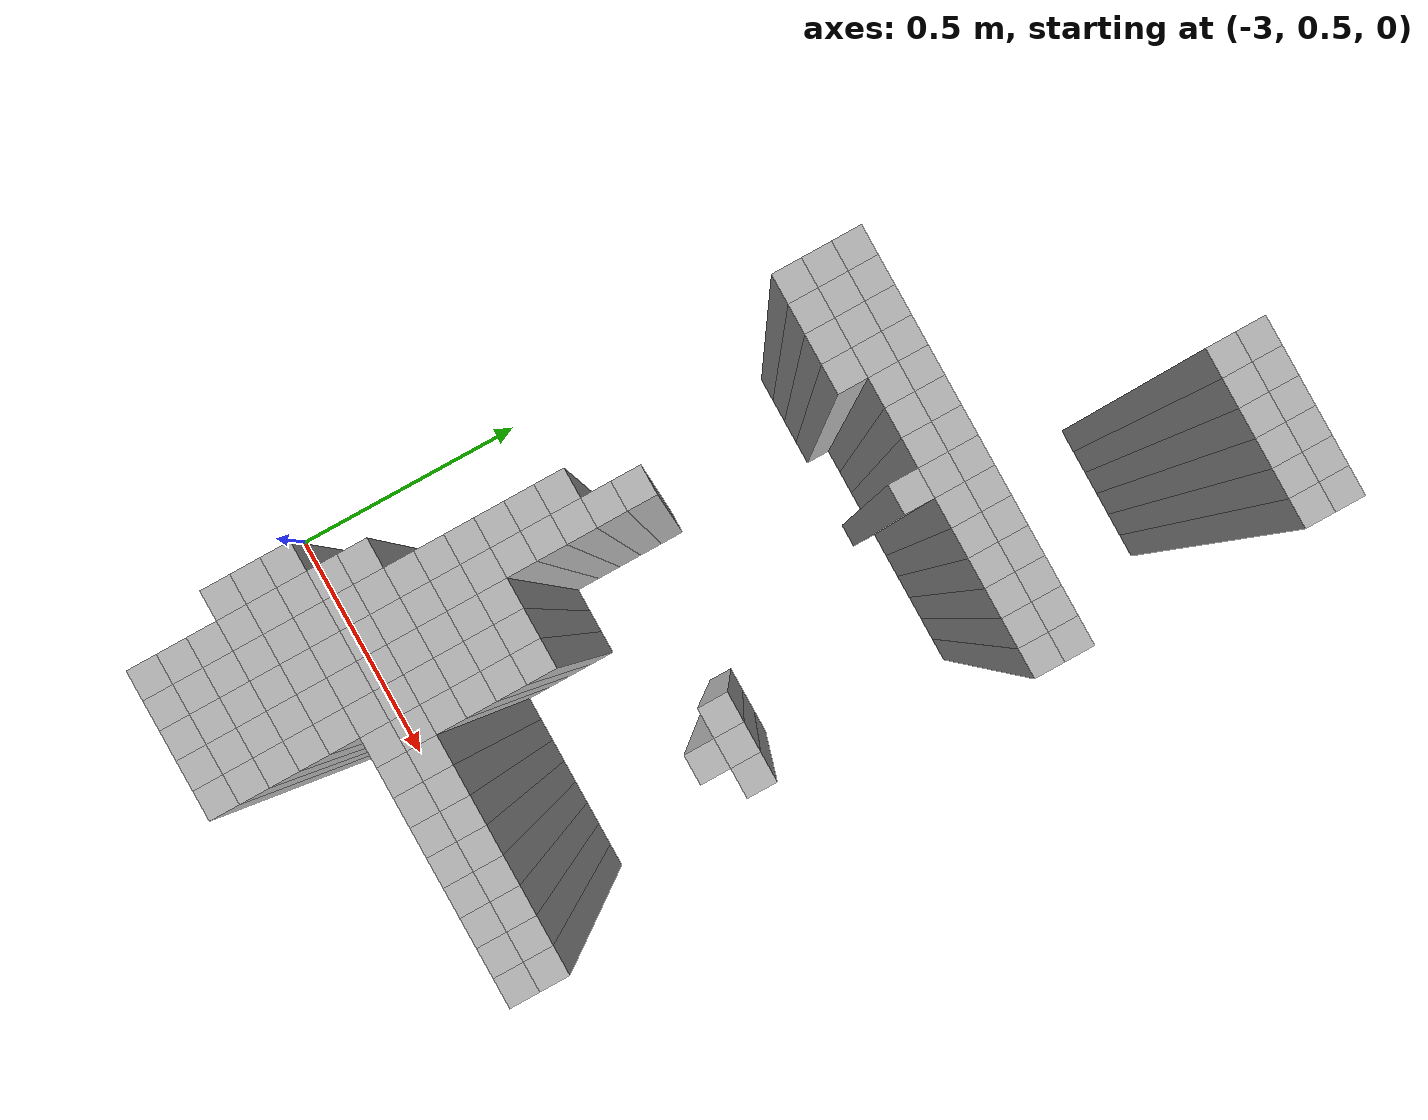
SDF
<sdf version="1.9">
 <world name="map_world">
  <model name="wall_175_112">
   <static>true</static>
   <pose>-2.411 2.080 1.250 0 0 0</pose>
   <link name="link">
    <collision name="collision"><geometry><box><size>0.050 0.050 2.500</size></box></geometry></collision>
    <visual name="visual"><geometry><box><size>0.050 0.050 2.500</size></box></geometry></visual>
   </link>
  </model>
  <model name="wall_176_112">
   <static>true</static>
   <pose>-2.361 2.080 1.250 0 0 0</pose>
   <link name="link">
    <collision name="collision"><geometry><box><size>0.050 0.050 2.500</size></box></geometry></collision>
    <visual name="visual"><geometry><box><size>0.050 0.050 2.500</size></box></geometry></visual>
   </link>
  </model>
  <model name="wall_177_112">
   <static>true</static>
   <pose>-2.311 2.080 1.250 0 0 0</pose>
   <link name="link">
    <collision name="collision"><geometry><box><size>0.050 0.050 2.500</size></box></geometry></collision>
    <visual name="visual"><geometry><box><size>0.050 0.050 2.500</size></box></geometry></visual>
   </link>
  </model>
  <model name="wall_178_112">
   <static>true</static>
   <pose>-2.261 2.080 1.250 0 0 0</pose>
   <link name="link">
    <collision name="collision"><geometry><box><size>0.050 0.050 2.500</size></box></geometry></collision>
    <visual name="visual"><geometry><box><size>0.050 0.050 2.500</size></box></geometry></visual>
   </link>
  </model>
  <model name="wall_179_112">
   <static>true</static>
   <pose>-2.211 2.080 1.250 0 0 0</pose>
   <link name="link">
    <collision name="collision"><geometry><box><size>0.050 0.050 2.500</size></box></geometry></collision>
    <visual name="visual"><geometry><box><size>0.050 0.050 2.500</size></box></geometry></visual>
   </link>
  </model>
  <model name="wall_180_112">
   <static>true</static>
   <pose>-2.161 2.080 1.250 0 0 0</pose>
   <link name="link">
    <collision name="collision"><geometry><box><size>0.050 0.050 2.500</size></box></geometry></collision>
    <visual name="visual"><geometry><box><size>0.050 0.050 2.500</size></box></geometry></visual>
   </link>
  </model>
  <model name="wall_175_113">
   <static>true</static>
   <pose>-2.411 2.030 1.250 0 0 0</pose>
   <link name="link">
    <collision name="collision"><geometry><box><size>0.050 0.050 2.500</size></box></geometry></collision>
    <visual name="visual"><geometry><box><size>0.050 0.050 2.500</size></box></geometry></visual>
   </link>
  </model>
  <model name="wall_176_113">
   <static>true</static>
   <pose>-2.361 2.030 1.250 0 0 0</pose>
   <link name="link">
    <collision name="collision"><geometry><box><size>0.050 0.050 2.500</size></box></geometry></collision>
    <visual name="visual"><geometry><box><size>0.050 0.050 2.500</size></box></geometry></visual>
   </link>
  </model>
  <model name="wall_177_113">
   <static>true</static>
   <pose>-2.311 2.030 1.250 0 0 0</pose>
   <link name="link">
    <collision name="collision"><geometry><box><size>0.050 0.050 2.500</size></box></geometry></collision>
    <visual name="visual"><geometry><box><size>0.050 0.050 2.500</size></box></geometry></visual>
   </link>
  </model>
  <model name="wall_178_113">
   <static>true</static>
   <pose>-2.261 2.030 1.250 0 0 0</pose>
   <link name="link">
    <collision name="collision"><geometry><box><size>0.050 0.050 2.500</size></box></geometry></collision>
    <visual name="visual"><geometry><box><size>0.050 0.050 2.500</size></box></geometry></visual>
   </link>
  </model>
  <model name="wall_179_113">
   <static>true</static>
   <pose>-2.211 2.030 1.250 0 0 0</pose>
   <link name="link">
    <collision name="collision"><geometry><box><size>0.050 0.050 2.500</size></box></geometry></collision>
    <visual name="visual"><geometry><box><size>0.050 0.050 2.500</size></box></geometry></visual>
   </link>
  </model>
  <model name="wall_180_113">
   <static>true</static>
   <pose>-2.161 2.030 1.250 0 0 0</pose>
   <link name="link">
    <collision name="collision"><geometry><box><size>0.050 0.050 2.500</size></box></geometry></collision>
    <visual name="visual"><geometry><box><size>0.050 0.050 2.500</size></box></geometry></visual>
   </link>
  </model>
  <model name="wall_167_121">
   <static>true</static>
   <pose>-2.811 1.630 1.250 0 0 0</pose>
   <link name="link">
    <collision name="collision"><geometry><box><size>0.050 0.050 2.500</size></box></geometry></collision>
    <visual name="visual"><geometry><box><size>0.050 0.050 2.500</size></box></geometry></visual>
   </link>
  </model>
  <model name="wall_168_121">
   <static>true</static>
   <pose>-2.761 1.630 1.250 0 0 0</pose>
   <link name="link">
    <collision name="collision"><geometry><box><size>0.050 0.050 2.500</size></box></geometry></collision>
    <visual name="visual"><geometry><box><size>0.050 0.050 2.500</size></box></geometry></visual>
   </link>
  </model>
  <model name="wall_169_121">
   <static>true</static>
   <pose>-2.711 1.630 1.250 0 0 0</pose>
   <link name="link">
    <collision name="collision"><geometry><box><size>0.050 0.050 2.500</size></box></geometry></collision>
    <visual name="visual"><geometry><box><size>0.050 0.050 2.500</size></box></geometry></visual>
   </link>
  </model>
  <model name="wall_170_121">
   <static>true</static>
   <pose>-2.661 1.630 1.250 0 0 0</pose>
   <link name="link">
    <collision name="collision"><geometry><box><size>0.050 0.050 2.500</size></box></geometry></collision>
    <visual name="visual"><geometry><box><size>0.050 0.050 2.500</size></box></geometry></visual>
   </link>
  </model>
  <model name="wall_171_121">
   <static>true</static>
   <pose>-2.611 1.630 1.250 0 0 0</pose>
   <link name="link">
    <collision name="collision"><geometry><box><size>0.050 0.050 2.500</size></box></geometry></collision>
    <visual name="visual"><geometry><box><size>0.050 0.050 2.500</size></box></geometry></visual>
   </link>
  </model>
  <model name="wall_172_121">
   <static>true</static>
   <pose>-2.561 1.630 1.250 0 0 0</pose>
   <link name="link">
    <collision name="collision"><geometry><box><size>0.050 0.050 2.500</size></box></geometry></collision>
    <visual name="visual"><geometry><box><size>0.050 0.050 2.500</size></box></geometry></visual>
   </link>
  </model>
  <model name="wall_173_121">
   <static>true</static>
   <pose>-2.511 1.630 1.250 0 0 0</pose>
   <link name="link">
    <collision name="collision"><geometry><box><size>0.050 0.050 2.500</size></box></geometry></collision>
    <visual name="visual"><geometry><box><size>0.050 0.050 2.500</size></box></geometry></visual>
   </link>
  </model>
  <model name="wall_174_121">
   <static>true</static>
   <pose>-2.461 1.630 1.250 0 0 0</pose>
   <link name="link">
    <collision name="collision"><geometry><box><size>0.050 0.050 2.500</size></box></geometry></collision>
    <visual name="visual"><geometry><box><size>0.050 0.050 2.500</size></box></geometry></visual>
   </link>
  </model>
  <model name="wall_175_121">
   <static>true</static>
   <pose>-2.411 1.630 1.250 0 0 0</pose>
   <link name="link">
    <collision name="collision"><geometry><box><size>0.050 0.050 2.500</size></box></geometry></collision>
    <visual name="visual"><geometry><box><size>0.050 0.050 2.500</size></box></geometry></visual>
   </link>
  </model>
  <model name="wall_176_121">
   <static>true</static>
   <pose>-2.361 1.630 1.250 0 0 0</pose>
   <link name="link">
    <collision name="collision"><geometry><box><size>0.050 0.050 2.500</size></box></geometry></collision>
    <visual name="visual"><geometry><box><size>0.050 0.050 2.500</size></box></geometry></visual>
   </link>
  </model>
  <model name="wall_177_121">
   <static>true</static>
   <pose>-2.311 1.630 1.250 0 0 0</pose>
   <link name="link">
    <collision name="collision"><geometry><box><size>0.050 0.050 2.500</size></box></geometry></collision>
    <visual name="visual"><geometry><box><size>0.050 0.050 2.500</size></box></geometry></visual>
   </link>
  </model>
  <model name="wall_178_121">
   <static>true</static>
   <pose>-2.261 1.630 1.250 0 0 0</pose>
   <link name="link">
    <collision name="collision"><geometry><box><size>0.050 0.050 2.500</size></box></geometry></collision>
    <visual name="visual"><geometry><box><size>0.050 0.050 2.500</size></box></geometry></visual>
   </link>
  </model>
  <model name="wall_179_121">
   <static>true</static>
   <pose>-2.211 1.630 1.250 0 0 0</pose>
   <link name="link">
    <collision name="collision"><geometry><box><size>0.050 0.050 2.500</size></box></geometry></collision>
    <visual name="visual"><geometry><box><size>0.050 0.050 2.500</size></box></geometry></visual>
   </link>
  </model>
  <model name="wall_180_121">
   <static>true</static>
   <pose>-2.161 1.630 1.250 0 0 0</pose>
   <link name="link">
    <collision name="collision"><geometry><box><size>0.050 0.050 2.500</size></box></geometry></collision>
    <visual name="visual"><geometry><box><size>0.050 0.050 2.500</size></box></geometry></visual>
   </link>
  </model>
  <model name="wall_167_122">
   <static>true</static>
   <pose>-2.811 1.580 1.250 0 0 0</pose>
   <link name="link">
    <collision name="collision"><geometry><box><size>0.050 0.050 2.500</size></box></geometry></collision>
    <visual name="visual"><geometry><box><size>0.050 0.050 2.500</size></box></geometry></visual>
   </link>
  </model>
  <model name="wall_168_122">
   <static>true</static>
   <pose>-2.761 1.580 1.250 0 0 0</pose>
   <link name="link">
    <collision name="collision"><geometry><box><size>0.050 0.050 2.500</size></box></geometry></collision>
    <visual name="visual"><geometry><box><size>0.050 0.050 2.500</size></box></geometry></visual>
   </link>
  </model>
  <model name="wall_169_122">
   <static>true</static>
   <pose>-2.711 1.580 1.250 0 0 0</pose>
   <link name="link">
    <collision name="collision"><geometry><box><size>0.050 0.050 2.500</size></box></geometry></collision>
    <visual name="visual"><geometry><box><size>0.050 0.050 2.500</size></box></geometry></visual>
   </link>
  </model>
  <model name="wall_170_122">
   <static>true</static>
   <pose>-2.661 1.580 1.250 0 0 0</pose>
   <link name="link">
    <collision name="collision"><geometry><box><size>0.050 0.050 2.500</size></box></geometry></collision>
    <visual name="visual"><geometry><box><size>0.050 0.050 2.500</size></box></geometry></visual>
   </link>
  </model>
  <model name="wall_171_122">
   <static>true</static>
   <pose>-2.611 1.580 1.250 0 0 0</pose>
   <link name="link">
    <collision name="collision"><geometry><box><size>0.050 0.050 2.500</size></box></geometry></collision>
    <visual name="visual"><geometry><box><size>0.050 0.050 2.500</size></box></geometry></visual>
   </link>
  </model>
  <model name="wall_172_122">
   <static>true</static>
   <pose>-2.561 1.580 1.250 0 0 0</pose>
   <link name="link">
    <collision name="collision"><geometry><box><size>0.050 0.050 2.500</size></box></geometry></collision>
    <visual name="visual"><geometry><box><size>0.050 0.050 2.500</size></box></geometry></visual>
   </link>
  </model>
  <model name="wall_173_122">
   <static>true</static>
   <pose>-2.511 1.580 1.250 0 0 0</pose>
   <link name="link">
    <collision name="collision"><geometry><box><size>0.050 0.050 2.500</size></box></geometry></collision>
    <visual name="visual"><geometry><box><size>0.050 0.050 2.500</size></box></geometry></visual>
   </link>
  </model>
  <model name="wall_174_122">
   <static>true</static>
   <pose>-2.461 1.580 1.250 0 0 0</pose>
   <link name="link">
    <collision name="collision"><geometry><box><size>0.050 0.050 2.500</size></box></geometry></collision>
    <visual name="visual"><geometry><box><size>0.050 0.050 2.500</size></box></geometry></visual>
   </link>
  </model>
  <model name="wall_175_122">
   <static>true</static>
   <pose>-2.411 1.580 1.250 0 0 0</pose>
   <link name="link">
    <collision name="collision"><geometry><box><size>0.050 0.050 2.500</size></box></geometry></collision>
    <visual name="visual"><geometry><box><size>0.050 0.050 2.500</size></box></geometry></visual>
   </link>
  </model>
  <model name="wall_176_122">
   <static>true</static>
   <pose>-2.361 1.580 1.250 0 0 0</pose>
   <link name="link">
    <collision name="collision"><geometry><box><size>0.050 0.050 2.500</size></box></geometry></collision>
    <visual name="visual"><geometry><box><size>0.050 0.050 2.500</size></box></geometry></visual>
   </link>
  </model>
  <model name="wall_177_122">
   <static>true</static>
   <pose>-2.311 1.580 1.250 0 0 0</pose>
   <link name="link">
    <collision name="collision"><geometry><box><size>0.050 0.050 2.500</size></box></geometry></collision>
    <visual name="visual"><geometry><box><size>0.050 0.050 2.500</size></box></geometry></visual>
   </link>
  </model>
  <model name="wall_178_122">
   <static>true</static>
   <pose>-2.261 1.580 1.250 0 0 0</pose>
   <link name="link">
    <collision name="collision"><geometry><box><size>0.050 0.050 2.500</size></box></geometry></collision>
    <visual name="visual"><geometry><box><size>0.050 0.050 2.500</size></box></geometry></visual>
   </link>
  </model>
  <model name="wall_179_122">
   <static>true</static>
   <pose>-2.211 1.580 1.250 0 0 0</pose>
   <link name="link">
    <collision name="collision"><geometry><box><size>0.050 0.050 2.500</size></box></geometry></collision>
    <visual name="visual"><geometry><box><size>0.050 0.050 2.500</size></box></geometry></visual>
   </link>
  </model>
  <model name="wall_180_122">
   <static>true</static>
   <pose>-2.161 1.580 1.250 0 0 0</pose>
   <link name="link">
    <collision name="collision"><geometry><box><size>0.050 0.050 2.500</size></box></geometry></collision>
    <visual name="visual"><geometry><box><size>0.050 0.050 2.500</size></box></geometry></visual>
   </link>
  </model>
  <model name="wall_167_123">
   <static>true</static>
   <pose>-2.811 1.530 1.250 0 0 0</pose>
   <link name="link">
    <collision name="collision"><geometry><box><size>0.050 0.050 2.500</size></box></geometry></collision>
    <visual name="visual"><geometry><box><size>0.050 0.050 2.500</size></box></geometry></visual>
   </link>
  </model>
  <model name="wall_168_123">
   <static>true</static>
   <pose>-2.761 1.530 1.250 0 0 0</pose>
   <link name="link">
    <collision name="collision"><geometry><box><size>0.050 0.050 2.500</size></box></geometry></collision>
    <visual name="visual"><geometry><box><size>0.050 0.050 2.500</size></box></geometry></visual>
   </link>
  </model>
  <model name="wall_169_123">
   <static>true</static>
   <pose>-2.711 1.530 1.250 0 0 0</pose>
   <link name="link">
    <collision name="collision"><geometry><box><size>0.050 0.050 2.500</size></box></geometry></collision>
    <visual name="visual"><geometry><box><size>0.050 0.050 2.500</size></box></geometry></visual>
   </link>
  </model>
  <model name="wall_170_123">
   <static>true</static>
   <pose>-2.661 1.530 1.250 0 0 0</pose>
   <link name="link">
    <collision name="collision"><geometry><box><size>0.050 0.050 2.500</size></box></geometry></collision>
    <visual name="visual"><geometry><box><size>0.050 0.050 2.500</size></box></geometry></visual>
   </link>
  </model>
  <model name="wall_174_123">
   <static>true</static>
   <pose>-2.461 1.530 1.250 0 0 0</pose>
   <link name="link">
    <collision name="collision"><geometry><box><size>0.050 0.050 2.500</size></box></geometry></collision>
    <visual name="visual"><geometry><box><size>0.050 0.050 2.500</size></box></geometry></visual>
   </link>
  </model>
  <model name="wall_170_130">
   <static>true</static>
   <pose>-2.661 1.180 1.250 0 0 0</pose>
   <link name="link">
    <collision name="collision"><geometry><box><size>0.050 0.050 2.500</size></box></geometry></collision>
    <visual name="visual"><geometry><box><size>0.050 0.050 2.500</size></box></geometry></visual>
   </link>
  </model>
  <model name="wall_170_131">
   <static>true</static>
   <pose>-2.661 1.130 1.250 0 0 0</pose>
   <link name="link">
    <collision name="collision"><geometry><box><size>0.050 0.050 2.500</size></box></geometry></collision>
    <visual name="visual"><geometry><box><size>0.050 0.050 2.500</size></box></geometry></visual>
   </link>
  </model>
  <model name="wall_177_131">
   <static>true</static>
   <pose>-2.311 1.130 1.250 0 0 0</pose>
   <link name="link">
    <collision name="collision"><geometry><box><size>0.050 0.050 2.500</size></box></geometry></collision>
    <visual name="visual"><geometry><box><size>0.050 0.050 2.500</size></box></geometry></visual>
   </link>
  </model>
  <model name="wall_178_131">
   <static>true</static>
   <pose>-2.261 1.130 1.250 0 0 0</pose>
   <link name="link">
    <collision name="collision"><geometry><box><size>0.050 0.050 2.500</size></box></geometry></collision>
    <visual name="visual"><geometry><box><size>0.050 0.050 2.500</size></box></geometry></visual>
   </link>
  </model>
  <model name="wall_179_131">
   <static>true</static>
   <pose>-2.211 1.130 1.250 0 0 0</pose>
   <link name="link">
    <collision name="collision"><geometry><box><size>0.050 0.050 2.500</size></box></geometry></collision>
    <visual name="visual"><geometry><box><size>0.050 0.050 2.500</size></box></geometry></visual>
   </link>
  </model>
  <model name="wall_169_132">
   <static>true</static>
   <pose>-2.711 1.080 1.250 0 0 0</pose>
   <link name="link">
    <collision name="collision"><geometry><box><size>0.050 0.050 2.500</size></box></geometry></collision>
    <visual name="visual"><geometry><box><size>0.050 0.050 2.500</size></box></geometry></visual>
   </link>
  </model>
  <model name="wall_170_132">
   <static>true</static>
   <pose>-2.661 1.080 1.250 0 0 0</pose>
   <link name="link">
    <collision name="collision"><geometry><box><size>0.050 0.050 2.500</size></box></geometry></collision>
    <visual name="visual"><geometry><box><size>0.050 0.050 2.500</size></box></geometry></visual>
   </link>
  </model>
  <model name="wall_178_132">
   <static>true</static>
   <pose>-2.261 1.080 1.250 0 0 0</pose>
   <link name="link">
    <collision name="collision"><geometry><box><size>0.050 0.050 2.500</size></box></geometry></collision>
    <visual name="visual"><geometry><box><size>0.050 0.050 2.500</size></box></geometry></visual>
   </link>
  </model>
  <model name="wall_169_133">
   <static>true</static>
   <pose>-2.711 1.030 1.250 0 0 0</pose>
   <link name="link">
    <collision name="collision"><geometry><box><size>0.050 0.050 2.500</size></box></geometry></collision>
    <visual name="visual"><geometry><box><size>0.050 0.050 2.500</size></box></geometry></visual>
   </link>
  </model>
  <model name="wall_170_133">
   <static>true</static>
   <pose>-2.661 1.030 1.250 0 0 0</pose>
   <link name="link">
    <collision name="collision"><geometry><box><size>0.050 0.050 2.500</size></box></geometry></collision>
    <visual name="visual"><geometry><box><size>0.050 0.050 2.500</size></box></geometry></visual>
   </link>
  </model>
  <model name="wall_169_134">
   <static>true</static>
   <pose>-2.711 0.980 1.250 0 0 0</pose>
   <link name="link">
    <collision name="collision"><geometry><box><size>0.050 0.050 2.500</size></box></geometry></collision>
    <visual name="visual"><geometry><box><size>0.050 0.050 2.500</size></box></geometry></visual>
   </link>
  </model>
  <model name="wall_170_134">
   <static>true</static>
   <pose>-2.661 0.980 1.250 0 0 0</pose>
   <link name="link">
    <collision name="collision"><geometry><box><size>0.050 0.050 2.500</size></box></geometry></collision>
    <visual name="visual"><geometry><box><size>0.050 0.050 2.500</size></box></geometry></visual>
   </link>
  </model>
  <model name="wall_169_135">
   <static>true</static>
   <pose>-2.711 0.930 1.250 0 0 0</pose>
   <link name="link">
    <collision name="collision"><geometry><box><size>0.050 0.050 2.500</size></box></geometry></collision>
    <visual name="visual"><geometry><box><size>0.050 0.050 2.500</size></box></geometry></visual>
   </link>
  </model>
  <model name="wall_170_135">
   <static>true</static>
   <pose>-2.661 0.930 1.250 0 0 0</pose>
   <link name="link">
    <collision name="collision"><geometry><box><size>0.050 0.050 2.500</size></box></geometry></collision>
    <visual name="visual"><geometry><box><size>0.050 0.050 2.500</size></box></geometry></visual>
   </link>
  </model>
  <model name="wall_171_135">
   <static>true</static>
   <pose>-2.611 0.930 1.250 0 0 0</pose>
   <link name="link">
    <collision name="collision"><geometry><box><size>0.050 0.050 2.500</size></box></geometry></collision>
    <visual name="visual"><geometry><box><size>0.050 0.050 2.500</size></box></geometry></visual>
   </link>
  </model>
  <model name="wall_172_135">
   <static>true</static>
   <pose>-2.561 0.930 1.250 0 0 0</pose>
   <link name="link">
    <collision name="collision"><geometry><box><size>0.050 0.050 2.500</size></box></geometry></collision>
    <visual name="visual"><geometry><box><size>0.050 0.050 2.500</size></box></geometry></visual>
   </link>
  </model>
  <model name="wall_173_135">
   <static>true</static>
   <pose>-2.511 0.930 1.250 0 0 0</pose>
   <link name="link">
    <collision name="collision"><geometry><box><size>0.050 0.050 2.500</size></box></geometry></collision>
    <visual name="visual"><geometry><box><size>0.050 0.050 2.500</size></box></geometry></visual>
   </link>
  </model>
  <model name="wall_169_136">
   <static>true</static>
   <pose>-2.711 0.880 1.250 0 0 0</pose>
   <link name="link">
    <collision name="collision"><geometry><box><size>0.050 0.050 2.500</size></box></geometry></collision>
    <visual name="visual"><geometry><box><size>0.050 0.050 2.500</size></box></geometry></visual>
   </link>
  </model>
  <model name="wall_170_136">
   <static>true</static>
   <pose>-2.661 0.880 1.250 0 0 0</pose>
   <link name="link">
    <collision name="collision"><geometry><box><size>0.050 0.050 2.500</size></box></geometry></collision>
    <visual name="visual"><geometry><box><size>0.050 0.050 2.500</size></box></geometry></visual>
   </link>
  </model>
  <model name="wall_171_136">
   <static>true</static>
   <pose>-2.611 0.880 1.250 0 0 0</pose>
   <link name="link">
    <collision name="collision"><geometry><box><size>0.050 0.050 2.500</size></box></geometry></collision>
    <visual name="visual"><geometry><box><size>0.050 0.050 2.500</size></box></geometry></visual>
   </link>
  </model>
  <model name="wall_172_136">
   <static>true</static>
   <pose>-2.561 0.880 1.250 0 0 0</pose>
   <link name="link">
    <collision name="collision"><geometry><box><size>0.050 0.050 2.500</size></box></geometry></collision>
    <visual name="visual"><geometry><box><size>0.050 0.050 2.500</size></box></geometry></visual>
   </link>
  </model>
  <model name="wall_173_136">
   <static>true</static>
   <pose>-2.511 0.880 1.250 0 0 0</pose>
   <link name="link">
    <collision name="collision"><geometry><box><size>0.050 0.050 2.500</size></box></geometry></collision>
    <visual name="visual"><geometry><box><size>0.050 0.050 2.500</size></box></geometry></visual>
   </link>
  </model>
  <model name="wall_169_137">
   <static>true</static>
   <pose>-2.711 0.830 1.250 0 0 0</pose>
   <link name="link">
    <collision name="collision"><geometry><box><size>0.050 0.050 2.500</size></box></geometry></collision>
    <visual name="visual"><geometry><box><size>0.050 0.050 2.500</size></box></geometry></visual>
   </link>
  </model>
  <model name="wall_170_137">
   <static>true</static>
   <pose>-2.661 0.830 1.250 0 0 0</pose>
   <link name="link">
    <collision name="collision"><geometry><box><size>0.050 0.050 2.500</size></box></geometry></collision>
    <visual name="visual"><geometry><box><size>0.050 0.050 2.500</size></box></geometry></visual>
   </link>
  </model>
  <model name="wall_171_137">
   <static>true</static>
   <pose>-2.611 0.830 1.250 0 0 0</pose>
   <link name="link">
    <collision name="collision"><geometry><box><size>0.050 0.050 2.500</size></box></geometry></collision>
    <visual name="visual"><geometry><box><size>0.050 0.050 2.500</size></box></geometry></visual>
   </link>
  </model>
  <model name="wall_172_137">
   <static>true</static>
   <pose>-2.561 0.830 1.250 0 0 0</pose>
   <link name="link">
    <collision name="collision"><geometry><box><size>0.050 0.050 2.500</size></box></geometry></collision>
    <visual name="visual"><geometry><box><size>0.050 0.050 2.500</size></box></geometry></visual>
   </link>
  </model>
  <model name="wall_173_137">
   <static>true</static>
   <pose>-2.511 0.830 1.250 0 0 0</pose>
   <link name="link">
    <collision name="collision"><geometry><box><size>0.050 0.050 2.500</size></box></geometry></collision>
    <visual name="visual"><geometry><box><size>0.050 0.050 2.500</size></box></geometry></visual>
   </link>
  </model>
  <model name="wall_168_138">
   <static>true</static>
   <pose>-2.761 0.780 1.250 0 0 0</pose>
   <link name="link">
    <collision name="collision"><geometry><box><size>0.050 0.050 2.500</size></box></geometry></collision>
    <visual name="visual"><geometry><box><size>0.050 0.050 2.500</size></box></geometry></visual>
   </link>
  </model>
  <model name="wall_169_138">
   <static>true</static>
   <pose>-2.711 0.780 1.250 0 0 0</pose>
   <link name="link">
    <collision name="collision"><geometry><box><size>0.050 0.050 2.500</size></box></geometry></collision>
    <visual name="visual"><geometry><box><size>0.050 0.050 2.500</size></box></geometry></visual>
   </link>
  </model>
  <model name="wall_170_138">
   <static>true</static>
   <pose>-2.661 0.780 1.250 0 0 0</pose>
   <link name="link">
    <collision name="collision"><geometry><box><size>0.050 0.050 2.500</size></box></geometry></collision>
    <visual name="visual"><geometry><box><size>0.050 0.050 2.500</size></box></geometry></visual>
   </link>
  </model>
  <model name="wall_171_138">
   <static>true</static>
   <pose>-2.611 0.780 1.250 0 0 0</pose>
   <link name="link">
    <collision name="collision"><geometry><box><size>0.050 0.050 2.500</size></box></geometry></collision>
    <visual name="visual"><geometry><box><size>0.050 0.050 2.500</size></box></geometry></visual>
   </link>
  </model>
  <model name="wall_172_138">
   <static>true</static>
   <pose>-2.561 0.780 1.250 0 0 0</pose>
   <link name="link">
    <collision name="collision"><geometry><box><size>0.050 0.050 2.500</size></box></geometry></collision>
    <visual name="visual"><geometry><box><size>0.050 0.050 2.500</size></box></geometry></visual>
   </link>
  </model>
  <model name="wall_173_138">
   <static>true</static>
   <pose>-2.511 0.780 1.250 0 0 0</pose>
   <link name="link">
    <collision name="collision"><geometry><box><size>0.050 0.050 2.500</size></box></geometry></collision>
    <visual name="visual"><geometry><box><size>0.050 0.050 2.500</size></box></geometry></visual>
   </link>
  </model>
  <model name="wall_168_139">
   <static>true</static>
   <pose>-2.761 0.730 1.250 0 0 0</pose>
   <link name="link">
    <collision name="collision"><geometry><box><size>0.050 0.050 2.500</size></box></geometry></collision>
    <visual name="visual"><geometry><box><size>0.050 0.050 2.500</size></box></geometry></visual>
   </link>
  </model>
  <model name="wall_169_139">
   <static>true</static>
   <pose>-2.711 0.730 1.250 0 0 0</pose>
   <link name="link">
    <collision name="collision"><geometry><box><size>0.050 0.050 2.500</size></box></geometry></collision>
    <visual name="visual"><geometry><box><size>0.050 0.050 2.500</size></box></geometry></visual>
   </link>
  </model>
  <model name="wall_170_139">
   <static>true</static>
   <pose>-2.661 0.730 1.250 0 0 0</pose>
   <link name="link">
    <collision name="collision"><geometry><box><size>0.050 0.050 2.500</size></box></geometry></collision>
    <visual name="visual"><geometry><box><size>0.050 0.050 2.500</size></box></geometry></visual>
   </link>
  </model>
  <model name="wall_171_139">
   <static>true</static>
   <pose>-2.611 0.730 1.250 0 0 0</pose>
   <link name="link">
    <collision name="collision"><geometry><box><size>0.050 0.050 2.500</size></box></geometry></collision>
    <visual name="visual"><geometry><box><size>0.050 0.050 2.500</size></box></geometry></visual>
   </link>
  </model>
  <model name="wall_172_139">
   <static>true</static>
   <pose>-2.561 0.730 1.250 0 0 0</pose>
   <link name="link">
    <collision name="collision"><geometry><box><size>0.050 0.050 2.500</size></box></geometry></collision>
    <visual name="visual"><geometry><box><size>0.050 0.050 2.500</size></box></geometry></visual>
   </link>
  </model>
  <model name="wall_173_139">
   <static>true</static>
   <pose>-2.511 0.730 1.250 0 0 0</pose>
   <link name="link">
    <collision name="collision"><geometry><box><size>0.050 0.050 2.500</size></box></geometry></collision>
    <visual name="visual"><geometry><box><size>0.050 0.050 2.500</size></box></geometry></visual>
   </link>
  </model>
  <model name="wall_174_139">
   <static>true</static>
   <pose>-2.461 0.730 1.250 0 0 0</pose>
   <link name="link">
    <collision name="collision"><geometry><box><size>0.050 0.050 2.500</size></box></geometry></collision>
    <visual name="visual"><geometry><box><size>0.050 0.050 2.500</size></box></geometry></visual>
   </link>
  </model>
  <model name="wall_175_139">
   <static>true</static>
   <pose>-2.411 0.730 1.250 0 0 0</pose>
   <link name="link">
    <collision name="collision"><geometry><box><size>0.050 0.050 2.500</size></box></geometry></collision>
    <visual name="visual"><geometry><box><size>0.050 0.050 2.500</size></box></geometry></visual>
   </link>
  </model>
  <model name="wall_176_139">
   <static>true</static>
   <pose>-2.361 0.730 1.250 0 0 0</pose>
   <link name="link">
    <collision name="collision"><geometry><box><size>0.050 0.050 2.500</size></box></geometry></collision>
    <visual name="visual"><geometry><box><size>0.050 0.050 2.500</size></box></geometry></visual>
   </link>
  </model>
  <model name="wall_177_139">
   <static>true</static>
   <pose>-2.311 0.730 1.250 0 0 0</pose>
   <link name="link">
    <collision name="collision"><geometry><box><size>0.050 0.050 2.500</size></box></geometry></collision>
    <visual name="visual"><geometry><box><size>0.050 0.050 2.500</size></box></geometry></visual>
   </link>
  </model>
  <model name="wall_178_139">
   <static>true</static>
   <pose>-2.261 0.730 1.250 0 0 0</pose>
   <link name="link">
    <collision name="collision"><geometry><box><size>0.050 0.050 2.500</size></box></geometry></collision>
    <visual name="visual"><geometry><box><size>0.050 0.050 2.500</size></box></geometry></visual>
   </link>
  </model>
  <model name="wall_179_139">
   <static>true</static>
   <pose>-2.211 0.730 1.250 0 0 0</pose>
   <link name="link">
    <collision name="collision"><geometry><box><size>0.050 0.050 2.500</size></box></geometry></collision>
    <visual name="visual"><geometry><box><size>0.050 0.050 2.500</size></box></geometry></visual>
   </link>
  </model>
  <model name="wall_180_139">
   <static>true</static>
   <pose>-2.161 0.730 1.250 0 0 0</pose>
   <link name="link">
    <collision name="collision"><geometry><box><size>0.050 0.050 2.500</size></box></geometry></collision>
    <visual name="visual"><geometry><box><size>0.050 0.050 2.500</size></box></geometry></visual>
   </link>
  </model>
  <model name="wall_181_139">
   <static>true</static>
   <pose>-2.111 0.730 1.250 0 0 0</pose>
   <link name="link">
    <collision name="collision"><geometry><box><size>0.050 0.050 2.500</size></box></geometry></collision>
    <visual name="visual"><geometry><box><size>0.050 0.050 2.500</size></box></geometry></visual>
   </link>
  </model>
  <model name="wall_167_140">
   <static>true</static>
   <pose>-2.811 0.680 1.250 0 0 0</pose>
   <link name="link">
    <collision name="collision"><geometry><box><size>0.050 0.050 2.500</size></box></geometry></collision>
    <visual name="visual"><geometry><box><size>0.050 0.050 2.500</size></box></geometry></visual>
   </link>
  </model>
  <model name="wall_168_140">
   <static>true</static>
   <pose>-2.761 0.680 1.250 0 0 0</pose>
   <link name="link">
    <collision name="collision"><geometry><box><size>0.050 0.050 2.500</size></box></geometry></collision>
    <visual name="visual"><geometry><box><size>0.050 0.050 2.500</size></box></geometry></visual>
   </link>
  </model>
  <model name="wall_169_140">
   <static>true</static>
   <pose>-2.711 0.680 1.250 0 0 0</pose>
   <link name="link">
    <collision name="collision"><geometry><box><size>0.050 0.050 2.500</size></box></geometry></collision>
    <visual name="visual"><geometry><box><size>0.050 0.050 2.500</size></box></geometry></visual>
   </link>
  </model>
  <model name="wall_170_140">
   <static>true</static>
   <pose>-2.661 0.680 1.250 0 0 0</pose>
   <link name="link">
    <collision name="collision"><geometry><box><size>0.050 0.050 2.500</size></box></geometry></collision>
    <visual name="visual"><geometry><box><size>0.050 0.050 2.500</size></box></geometry></visual>
   </link>
  </model>
  <model name="wall_171_140">
   <static>true</static>
   <pose>-2.611 0.680 1.250 0 0 0</pose>
   <link name="link">
    <collision name="collision"><geometry><box><size>0.050 0.050 2.500</size></box></geometry></collision>
    <visual name="visual"><geometry><box><size>0.050 0.050 2.500</size></box></geometry></visual>
   </link>
  </model>
  <model name="wall_172_140">
   <static>true</static>
   <pose>-2.561 0.680 1.250 0 0 0</pose>
   <link name="link">
    <collision name="collision"><geometry><box><size>0.050 0.050 2.500</size></box></geometry></collision>
    <visual name="visual"><geometry><box><size>0.050 0.050 2.500</size></box></geometry></visual>
   </link>
  </model>
  <model name="wall_173_140">
   <static>true</static>
   <pose>-2.511 0.680 1.250 0 0 0</pose>
   <link name="link">
    <collision name="collision"><geometry><box><size>0.050 0.050 2.500</size></box></geometry></collision>
    <visual name="visual"><geometry><box><size>0.050 0.050 2.500</size></box></geometry></visual>
   </link>
  </model>
  <model name="wall_174_140">
   <static>true</static>
   <pose>-2.461 0.680 1.250 0 0 0</pose>
   <link name="link">
    <collision name="collision"><geometry><box><size>0.050 0.050 2.500</size></box></geometry></collision>
    <visual name="visual"><geometry><box><size>0.050 0.050 2.500</size></box></geometry></visual>
   </link>
  </model>
  <model name="wall_175_140">
   <static>true</static>
   <pose>-2.411 0.680 1.250 0 0 0</pose>
   <link name="link">
    <collision name="collision"><geometry><box><size>0.050 0.050 2.500</size></box></geometry></collision>
    <visual name="visual"><geometry><box><size>0.050 0.050 2.500</size></box></geometry></visual>
   </link>
  </model>
  <model name="wall_176_140">
   <static>true</static>
   <pose>-2.361 0.680 1.250 0 0 0</pose>
   <link name="link">
    <collision name="collision"><geometry><box><size>0.050 0.050 2.500</size></box></geometry></collision>
    <visual name="visual"><geometry><box><size>0.050 0.050 2.500</size></box></geometry></visual>
   </link>
  </model>
  <model name="wall_177_140">
   <static>true</static>
   <pose>-2.311 0.680 1.250 0 0 0</pose>
   <link name="link">
    <collision name="collision"><geometry><box><size>0.050 0.050 2.500</size></box></geometry></collision>
    <visual name="visual"><geometry><box><size>0.050 0.050 2.500</size></box></geometry></visual>
   </link>
  </model>
  <model name="wall_178_140">
   <static>true</static>
   <pose>-2.261 0.680 1.250 0 0 0</pose>
   <link name="link">
    <collision name="collision"><geometry><box><size>0.050 0.050 2.500</size></box></geometry></collision>
    <visual name="visual"><geometry><box><size>0.050 0.050 2.500</size></box></geometry></visual>
   </link>
  </model>
  <model name="wall_179_140">
   <static>true</static>
   <pose>-2.211 0.680 1.250 0 0 0</pose>
   <link name="link">
    <collision name="collision"><geometry><box><size>0.050 0.050 2.500</size></box></geometry></collision>
    <visual name="visual"><geometry><box><size>0.050 0.050 2.500</size></box></geometry></visual>
   </link>
  </model>
  <model name="wall_180_140">
   <static>true</static>
   <pose>-2.161 0.680 1.250 0 0 0</pose>
   <link name="link">
    <collision name="collision"><geometry><box><size>0.050 0.050 2.500</size></box></geometry></collision>
    <visual name="visual"><geometry><box><size>0.050 0.050 2.500</size></box></geometry></visual>
   </link>
  </model>
  <model name="wall_181_140">
   <static>true</static>
   <pose>-2.111 0.680 1.250 0 0 0</pose>
   <link name="link">
    <collision name="collision"><geometry><box><size>0.050 0.050 2.500</size></box></geometry></collision>
    <visual name="visual"><geometry><box><size>0.050 0.050 2.500</size></box></geometry></visual>
   </link>
  </model>
  <model name="wall_167_141">
   <static>true</static>
   <pose>-2.811 0.630 1.250 0 0 0</pose>
   <link name="link">
    <collision name="collision"><geometry><box><size>0.050 0.050 2.500</size></box></geometry></collision>
    <visual name="visual"><geometry><box><size>0.050 0.050 2.500</size></box></geometry></visual>
   </link>
  </model>
  <model name="wall_168_141">
   <static>true</static>
   <pose>-2.761 0.630 1.250 0 0 0</pose>
   <link name="link">
    <collision name="collision"><geometry><box><size>0.050 0.050 2.500</size></box></geometry></collision>
    <visual name="visual"><geometry><box><size>0.050 0.050 2.500</size></box></geometry></visual>
   </link>
  </model>
  <model name="wall_169_141">
   <static>true</static>
   <pose>-2.711 0.630 1.250 0 0 0</pose>
   <link name="link">
    <collision name="collision"><geometry><box><size>0.050 0.050 2.500</size></box></geometry></collision>
    <visual name="visual"><geometry><box><size>0.050 0.050 2.500</size></box></geometry></visual>
   </link>
  </model>
  <model name="wall_170_141">
   <static>true</static>
   <pose>-2.661 0.630 1.250 0 0 0</pose>
   <link name="link">
    <collision name="collision"><geometry><box><size>0.050 0.050 2.500</size></box></geometry></collision>
    <visual name="visual"><geometry><box><size>0.050 0.050 2.500</size></box></geometry></visual>
   </link>
  </model>
  <model name="wall_171_141">
   <static>true</static>
   <pose>-2.611 0.630 1.250 0 0 0</pose>
   <link name="link">
    <collision name="collision"><geometry><box><size>0.050 0.050 2.500</size></box></geometry></collision>
    <visual name="visual"><geometry><box><size>0.050 0.050 2.500</size></box></geometry></visual>
   </link>
  </model>
  <model name="wall_172_141">
   <static>true</static>
   <pose>-2.561 0.630 1.250 0 0 0</pose>
   <link name="link">
    <collision name="collision"><geometry><box><size>0.050 0.050 2.500</size></box></geometry></collision>
    <visual name="visual"><geometry><box><size>0.050 0.050 2.500</size></box></geometry></visual>
   </link>
  </model>
  <model name="wall_167_142">
   <static>true</static>
   <pose>-2.811 0.580 1.250 0 0 0</pose>
   <link name="link">
    <collision name="collision"><geometry><box><size>0.050 0.050 2.500</size></box></geometry></collision>
    <visual name="visual"><geometry><box><size>0.050 0.050 2.500</size></box></geometry></visual>
   </link>
  </model>
  <model name="wall_168_142">
   <static>true</static>
   <pose>-2.761 0.580 1.250 0 0 0</pose>
   <link name="link">
    <collision name="collision"><geometry><box><size>0.050 0.050 2.500</size></box></geometry></collision>
    <visual name="visual"><geometry><box><size>0.050 0.050 2.500</size></box></geometry></visual>
   </link>
  </model>
  <model name="wall_169_142">
   <static>true</static>
   <pose>-2.711 0.580 1.250 0 0 0</pose>
   <link name="link">
    <collision name="collision"><geometry><box><size>0.050 0.050 2.500</size></box></geometry></collision>
    <visual name="visual"><geometry><box><size>0.050 0.050 2.500</size></box></geometry></visual>
   </link>
  </model>
  <model name="wall_170_142">
   <static>true</static>
   <pose>-2.661 0.580 1.250 0 0 0</pose>
   <link name="link">
    <collision name="collision"><geometry><box><size>0.050 0.050 2.500</size></box></geometry></collision>
    <visual name="visual"><geometry><box><size>0.050 0.050 2.500</size></box></geometry></visual>
   </link>
  </model>
  <model name="wall_171_142">
   <static>true</static>
   <pose>-2.611 0.580 1.250 0 0 0</pose>
   <link name="link">
    <collision name="collision"><geometry><box><size>0.050 0.050 2.500</size></box></geometry></collision>
    <visual name="visual"><geometry><box><size>0.050 0.050 2.500</size></box></geometry></visual>
   </link>
  </model>
  <model name="wall_172_142">
   <static>true</static>
   <pose>-2.561 0.580 1.250 0 0 0</pose>
   <link name="link">
    <collision name="collision"><geometry><box><size>0.050 0.050 2.500</size></box></geometry></collision>
    <visual name="visual"><geometry><box><size>0.050 0.050 2.500</size></box></geometry></visual>
   </link>
  </model>
  <model name="wall_168_143">
   <static>true</static>
   <pose>-2.761 0.530 1.250 0 0 0</pose>
   <link name="link">
    <collision name="collision"><geometry><box><size>0.050 0.050 2.500</size></box></geometry></collision>
    <visual name="visual"><geometry><box><size>0.050 0.050 2.500</size></box></geometry></visual>
   </link>
  </model>
  <model name="wall_169_143">
   <static>true</static>
   <pose>-2.711 0.530 1.250 0 0 0</pose>
   <link name="link">
    <collision name="collision"><geometry><box><size>0.050 0.050 2.500</size></box></geometry></collision>
    <visual name="visual"><geometry><box><size>0.050 0.050 2.500</size></box></geometry></visual>
   </link>
  </model>
  <model name="wall_170_143">
   <static>true</static>
   <pose>-2.661 0.530 1.250 0 0 0</pose>
   <link name="link">
    <collision name="collision"><geometry><box><size>0.050 0.050 2.500</size></box></geometry></collision>
    <visual name="visual"><geometry><box><size>0.050 0.050 2.500</size></box></geometry></visual>
   </link>
  </model>
  <model name="wall_171_143">
   <static>true</static>
   <pose>-2.611 0.530 1.250 0 0 0</pose>
   <link name="link">
    <collision name="collision"><geometry><box><size>0.050 0.050 2.500</size></box></geometry></collision>
    <visual name="visual"><geometry><box><size>0.050 0.050 2.500</size></box></geometry></visual>
   </link>
  </model>
  <model name="wall_172_143">
   <static>true</static>
   <pose>-2.561 0.530 1.250 0 0 0</pose>
   <link name="link">
    <collision name="collision"><geometry><box><size>0.050 0.050 2.500</size></box></geometry></collision>
    <visual name="visual"><geometry><box><size>0.050 0.050 2.500</size></box></geometry></visual>
   </link>
  </model>
  <model name="wall_168_144">
   <static>true</static>
   <pose>-2.761 0.480 1.250 0 0 0</pose>
   <link name="link">
    <collision name="collision"><geometry><box><size>0.050 0.050 2.500</size></box></geometry></collision>
    <visual name="visual"><geometry><box><size>0.050 0.050 2.500</size></box></geometry></visual>
   </link>
  </model>
  <model name="wall_169_144">
   <static>true</static>
   <pose>-2.711 0.480 1.250 0 0 0</pose>
   <link name="link">
    <collision name="collision"><geometry><box><size>0.050 0.050 2.500</size></box></geometry></collision>
    <visual name="visual"><geometry><box><size>0.050 0.050 2.500</size></box></geometry></visual>
   </link>
  </model>
  <model name="wall_170_144">
   <static>true</static>
   <pose>-2.661 0.480 1.250 0 0 0</pose>
   <link name="link">
    <collision name="collision"><geometry><box><size>0.050 0.050 2.500</size></box></geometry></collision>
    <visual name="visual"><geometry><box><size>0.050 0.050 2.500</size></box></geometry></visual>
   </link>
  </model>
  <model name="wall_171_144">
   <static>true</static>
   <pose>-2.611 0.480 1.250 0 0 0</pose>
   <link name="link">
    <collision name="collision"><geometry><box><size>0.050 0.050 2.500</size></box></geometry></collision>
    <visual name="visual"><geometry><box><size>0.050 0.050 2.500</size></box></geometry></visual>
   </link>
  </model>
  <model name="wall_172_144">
   <static>true</static>
   <pose>-2.561 0.480 1.250 0 0 0</pose>
   <link name="link">
    <collision name="collision"><geometry><box><size>0.050 0.050 2.500</size></box></geometry></collision>
    <visual name="visual"><geometry><box><size>0.050 0.050 2.500</size></box></geometry></visual>
   </link>
  </model>
  <model name="wall_168_145">
   <static>true</static>
   <pose>-2.761 0.430 1.250 0 0 0</pose>
   <link name="link">
    <collision name="collision"><geometry><box><size>0.050 0.050 2.500</size></box></geometry></collision>
    <visual name="visual"><geometry><box><size>0.050 0.050 2.500</size></box></geometry></visual>
   </link>
  </model>
  <model name="wall_169_145">
   <static>true</static>
   <pose>-2.711 0.430 1.250 0 0 0</pose>
   <link name="link">
    <collision name="collision"><geometry><box><size>0.050 0.050 2.500</size></box></geometry></collision>
    <visual name="visual"><geometry><box><size>0.050 0.050 2.500</size></box></geometry></visual>
   </link>
  </model>
  <model name="wall_170_145">
   <static>true</static>
   <pose>-2.661 0.430 1.250 0 0 0</pose>
   <link name="link">
    <collision name="collision"><geometry><box><size>0.050 0.050 2.500</size></box></geometry></collision>
    <visual name="visual"><geometry><box><size>0.050 0.050 2.500</size></box></geometry></visual>
   </link>
  </model>
  <model name="wall_171_145">
   <static>true</static>
   <pose>-2.611 0.430 1.250 0 0 0</pose>
   <link name="link">
    <collision name="collision"><geometry><box><size>0.050 0.050 2.500</size></box></geometry></collision>
    <visual name="visual"><geometry><box><size>0.050 0.050 2.500</size></box></geometry></visual>
   </link>
  </model>
  <model name="wall_172_145">
   <static>true</static>
   <pose>-2.561 0.430 1.250 0 0 0</pose>
   <link name="link">
    <collision name="collision"><geometry><box><size>0.050 0.050 2.500</size></box></geometry></collision>
    <visual name="visual"><geometry><box><size>0.050 0.050 2.500</size></box></geometry></visual>
   </link>
  </model>
 </world>
</sdf>
